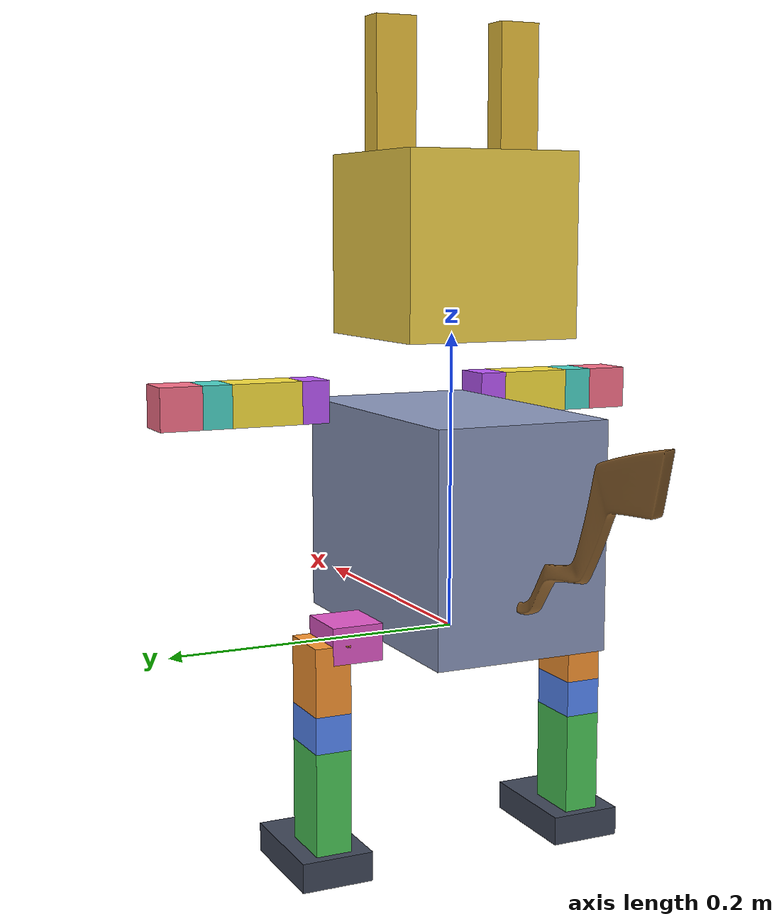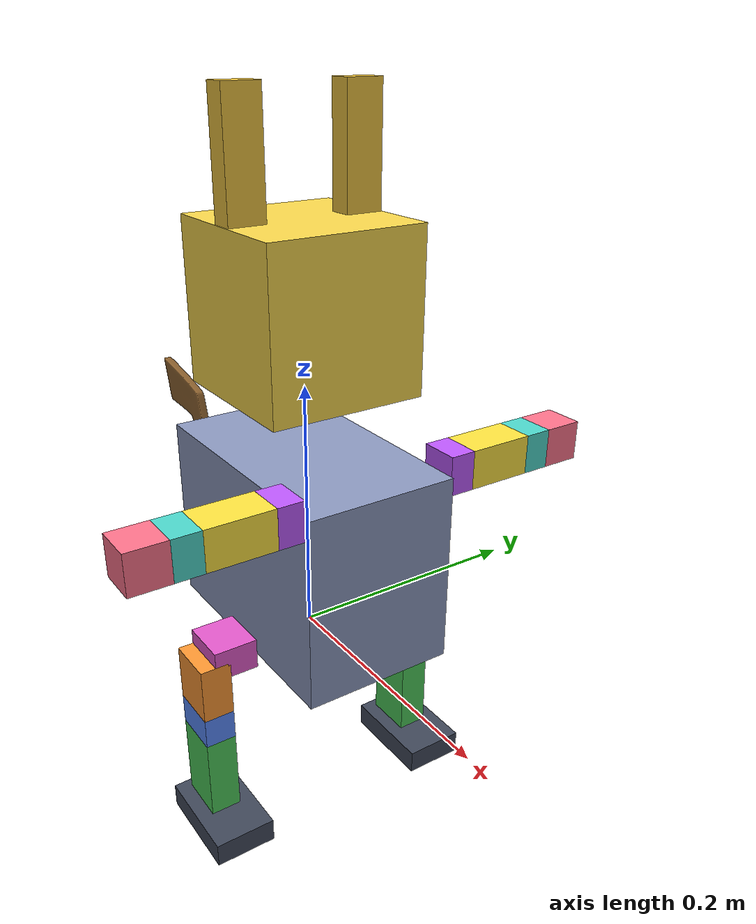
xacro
<?xml version="1.0"?>
<robot name="pikachu_sample_links" xmlns:xacro="http://www.ros.org/wiki/xacro">

  <!-- 【集中参数区】改这里即可整体调整 / 适配骨骼模型              -->

  <!-- ==== base：躯干 / 肩 ==== -->
  <xacro:property name="pelvis_half_width" value="0.06"/>
    <!-- 骨盆半宽：躯干中轴线 → 髋 pitch 关节的横向(y)距离，左右腿共用 -->
  <xacro:property name="shoulder_height"   value="0.15"/>
    <!-- 肩高：髋 pitch 平面 → 臂 pitch 关节的 z 抬升（也是躯干盒高度） -->
  <xacro:property name="torso_len_x"       value="0.2"/>
    <!-- 躯干盒 x(前后) 厚度 -->
  <!-- 躯干盒 y(左右) 宽度已绑定 pelvis_half_width*2：随骨盆联动，
       避免调整髋半宽时躯干不跟着加宽、两侧腿像架空一样 -->

  <!-- ==== arm：手臂（pitch/roll/yaw/elbow 四段，全 revolute 可动） ==== -->
  <xacro:property name="arm_y_offset" value="0.06"/>
    <!-- 臂 pitch 关节相对躯干中轴线 的横向(y)偏移，默认=pelvis_half_width，可独立调（左右反对称） -->
  <xacro:property name="arm_x_offset" value="0.083"/>
    <!-- 臂 pitch 关节相对躯干中心的 x(前后) 偏移（原硬编码 0.04） -->
  <xacro:property name="arm_pitch_to_roll_y" value="0.02"/>
    <!-- 臂 pitch→roll 沿 y 偏移 -->
  <xacro:property name="arm_upper_z" value="0.051"/>
    <!-- 臂 roll 段：沿 -z 偏移 / 长度 -->
  <xacro:property name="arm_lower_z" value="0.021"/>
    <!-- 臂 yaw 段：沿 -z 偏移 / 长度 -->
  <xacro:property name="arm_thick_x" value="0.03"/>
    <!-- 臂 box x(前后) 厚 -->
  <xacro:property name="arm_width_y" value="0.03"/>
    <!-- 臂 box y 厚 -->
  <xacro:property name="arm_lim_min" value="-1.57"/>
    <!-- 臂 pitch/roll/yaw/elbow 的关节下限（弧度） -->
  <xacro:property name="arm_lim_max" value="1.57"/>
    <!-- 臂 pitch/roll/yaw/elbow 的关节上限（弧度） -->

  <!-- ==== leg：腿（骨盆横向/侧段 + 纵向骨长 + 截面 + 脚） ==== -->
  <xacro:property name="hip_pitch_to_roll_y" value="0.0355"/>
    <!-- hip_pitch→hip_roll 关节沿 y 偏移 -->
  <xacro:property name="hip_roll_to_yaw_z"   value="0.046"/>
    <!-- hip_roll→hip_yaw 关节沿 -z 偏移（骨盆下沿） -->
  <xacro:property name="thigh_length" value="0.025"/>
    <!-- 【腿纵向骨长】大腿：hip_yaw→knee 关节 沿 -z 偏移（适配骨骼重点调） -->
  <xacro:property name="shank_length" value="0.070"/>
    <!-- 小腿：knee→ankle 关节 沿 -z 偏移（适配骨骼重点调） -->
  <xacro:property name="leg_thick_x" value="0.04"/>
    <!-- 腿 box 的 x(前后) 厚 -->
  <xacro:property name="leg_width_y" value="0.025"/>
    <!-- 腿 box 的 y(内外) 厚 -->
  <xacro:property name="foot_len_x" value="0.08"/>
  <xacro:property name="foot_wid_y" value="0.05"/>
  <xacro:property name="foot_hgt_z" value="0.02"/>
    <!-- 脚掌尺寸：长 / 宽 / 高 -->

  <!-- ==== head：头（pitch/yaw/roll 三段，全 revolute 可动） ==== -->
  <xacro:property name="head_len_x"         value="0.12"/>
    <!-- 头 x(前后) 尺寸 -->
  <xacro:property name="head_wid_y"         value="0.12"/>
    <!-- 头 y(左右) 尺寸 -->
  <xacro:property name="head_hgt_z"         value="0.12"/>
    <!-- 头 z(上下) 尺寸 -->
  <xacro:property name="head_bottom_offset" value="0.0484"/>
    <!-- 头底部 相对躯干顶(z=shoulder_height) 的额外抬升，>=0 -->
  <xacro:property name="head_lim_min" value="-0.8"/>
    <!-- 头关节下限（弧度） -->
  <xacro:property name="head_lim_max" value="0.8"/>
    <!-- 头关节上限（弧度） -->

  <!-- ==== ear：耳朵（左右各 pitch+roll 两关节，自头顶两侧伸出） ==== -->
  <xacro:property name="ear_off_y"       value="0.045"/>
    <!-- 耳朵 相对头中心 的横向(y)偏移，左右耳反对称 -->
  <xacro:property name="ear_len"         value="0.085"/>
    <!-- 耳全长（单段 box，从头顶 +z 伸出，到耳尖） -->
  <xacro:property name="ear_thick_x"     value="0.018"/>
    <!-- 耳 x(前后) 厚 -->
  <xacro:property name="ear_width_y"     value="0.028"/>
    <!-- 耳 y(左右) 宽 -->
  <xacro:property name="ear_lim_min"     value="-0.6"/>
    <!-- 耳关节下限（弧度） -->
  <xacro:property name="ear_lim_max"     value="0.8"/>
    <!-- 耳关节上限（弧度） -->

  <!-- ==== tail：尾巴（pitch+yaw 两关节，自躯干背面伸出） ==== -->
  <xacro:property name="tail_root_z"     value="0.03"/>
    <!-- 尾根 相对躯干底(z=0) 的高度 -->
  <xacro:property name="tail_len"        value="0.095"/>
    <!-- 尾全长（单段 box，沿 -x 从躯干后表面伸出，到尾尖） -->
  <xacro:property name="tail_wid"        value="0.05"/>
    <!-- 尾 y(左右) 宽（扁） -->
  <xacro:property name="tail_thick"      value="0.02"/>
    <!-- 尾 z(上下) 厚 -->
  <xacro:property name="tail_lim_min"    value="-1.2"/>
    <!-- 尾关节下限（弧度） -->
  <xacro:property name="tail_lim_max"    value="1.2"/>
    <!-- 尾关节上限（弧度） -->

  <!-- ==== 材质（仅便于视觉区分；相邻关节用不同色，左右对称） ==== -->
  <xacro:property name="mat_torso"   value="0.55 0.60 0.75 1"/>
    <!-- 躯干：淡蓝灰 -->
  <xacro:property name="mat_arm_pitch"     value="0.75 0.35 1.00 1"/>
    <!-- 臂段A(arm_pitch 肩)：紫 -->
  <xacro:property name="mat_arm_roll"      value="1.00 0.90 0.25 1"/>
    <!-- 臂段B(arm_roll 上臂)：黄 -->
  <xacro:property name="mat_arm_yaw"       value="0.30 0.85 0.80 1"/>
    <!-- 臂段C(arm_yaw 下臂)：青 -->
  <xacro:property name="mat_arm_elbow"     value="1.00 0.45 0.55 1"/>
    <!-- 臂段D(elbow 手)：珊瑚 -->
  <xacro:property name="mat_leg_hip_pitch" value="0.90 0.35 0.80 1"/>
    <!-- 腿段A(hip_pitch)：品红 -->
  <xacro:property name="mat_leg_hip_roll"  value="1.00 0.60 0.20 1"/>
    <!-- 腿段B(hip_roll)：橙 -->
  <xacro:property name="mat_leg_hip_yaw"   value="0.35 0.55 1.00 1"/>
    <!-- 腿段C(hip_yaw 大腿)：蓝 -->
  <xacro:property name="mat_leg_knee"      value="0.30 0.80 0.35 1"/>
    <!-- 腿段D(knee 小腿)：绿 -->
  <xacro:property name="mat_leg_ankle"     value="0.25 0.28 0.35 1"/>
    <!-- 腿段E(ankle 脚)：深灰蓝 -->
  <xacro:property name="mat_head"    value="0.98 0.85 0.30 1"/>
    <!-- 头：亮黄 -->
  <xacro:property name="mat_ear"         value="0.95 0.78 0.25 1"/>
    <!-- 耳朵：亮黄 -->
  <xacro:property name="mat_tail"        value="0.55 0.38 0.18 1"/>
    <!-- 尾巴：棕 -->

  <!-- 材质定义（每段独立颜色，左右对称共用同一套）              -->
  <material name="torso_blue">
    <color rgba="${mat_torso}"/>
  </material>
  <material name="arm_pitch">
    <color rgba="${mat_arm_pitch}"/>
  </material>
  <material name="arm_roll">
    <color rgba="${mat_arm_roll}"/>
  </material>
  <material name="arm_yaw">
    <color rgba="${mat_arm_yaw}"/>
  </material>
  <material name="arm_elbow">
    <color rgba="${mat_arm_elbow}"/>
  </material>
  <material name="leg_hip_pitch">
    <color rgba="${mat_leg_hip_pitch}"/>
  </material>
  <material name="leg_hip_roll">
    <color rgba="${mat_leg_hip_roll}"/>
  </material>
  <material name="leg_hip_yaw">
    <color rgba="${mat_leg_hip_yaw}"/>
  </material>
  <material name="leg_knee">
    <color rgba="${mat_leg_knee}"/>
  </material>
  <material name="leg_ankle">
    <color rgba="${mat_leg_ankle}"/>
  </material>
  <material name="head_yellow">
    <color rgba="${mat_head}"/>
  </material>
  <material name="ear_yellow">
    <color rgba="${mat_ear}"/>
  </material>
  <material name="tail_brown">
    <color rgba="${mat_tail}"/>
  </material>

  <!-- 腿部宏：生成 pitch/roll/yaw/knee/ankle 五个 link             -->
  <!--   side: left | right     sn:  1 | -1（y 方向符号）      -->
  <xacro:macro name="leg_links" params="side sn">
    <!-- hip_pitch_link：覆盖到 roll 的横向(y)段 -->
    <link name="${side}_hip_pitch_link">
      <visual>
        <origin xyz="0 ${sn*hip_pitch_to_roll_y/2.0} 0" rpy="0 0 0"/>
        <geometry>
          <box size="${leg_thick_x} ${hip_pitch_to_roll_y} ${leg_width_y}"/>
        </geometry>
        <material name="leg_hip_pitch"/>
      </visual>
<collision>
        <origin xyz="0 ${sn*hip_pitch_to_roll_y/2.0} 0" rpy="0 0 0"/>
        <geometry>
          <box size="${leg_thick_x} ${hip_pitch_to_roll_y} ${leg_width_y}"/>
        </geometry>
      </collision>
    </link>

    <joint name="${side}_hip_roll_joint" type="revolute">
      <origin xyz="0 ${sn*hip_pitch_to_roll_y} 0" rpy="0 0 0"/>
      <parent link="${side}_hip_pitch_link"/>
      <child  link="${side}_hip_roll_link"/>
      <axis xyz="${sn} 0 0"/>
      <limit lower="-0.09" upper="0.26" effort="9.0" velocity="1"/>
    </joint>

    <!-- hip_roll_link：覆盖到 yaw 的 -z 骨盆段 -->
    <link name="${side}_hip_roll_link">
      <visual>
        <origin xyz="0 0 ${-hip_roll_to_yaw_z/2.0}" rpy="0 0 0"/>
        <geometry>
          <box size="${leg_thick_x} ${leg_width_y} ${hip_roll_to_yaw_z}"/>
        </geometry>
        <material name="leg_hip_roll"/>
      </visual>
<collision>
        <origin xyz="0 0 ${-hip_roll_to_yaw_z/2.0}" rpy="0 0 0"/>
        <geometry>
          <box size="${leg_thick_x} ${leg_width_y} ${hip_roll_to_yaw_z}"/>
        </geometry>
      </collision>
    </link>

    <joint name="${side}_hip_yaw_joint" type="revolute">
      <origin xyz="0 0 ${-hip_roll_to_yaw_z}" rpy="0 0 0"/>
      <parent link="${side}_hip_roll_link"/>
      <child  link="${side}_hip_yaw_link"/>
      <axis xyz="0 0 ${sn}"/>
      <limit lower="-0.09" upper="0.26" effort="9.0" velocity="1"/>
    </joint>

    <!-- hip_yaw_link：大腿段（thigh_length） -->
    <link name="${side}_hip_yaw_link">
      <visual>
        <origin xyz="0 0 ${-thigh_length/2.0}" rpy="0 0 0"/>
        <geometry>
          <box size="${leg_thick_x} ${leg_width_y} ${thigh_length}"/>
        </geometry>
        <material name="leg_hip_yaw"/>
      </visual>
<collision>
        <origin xyz="0 0 ${-thigh_length/2.0}" rpy="0 0 0"/>
        <geometry>
          <box size="${leg_thick_x} ${leg_width_y} ${thigh_length}"/>
        </geometry>
      </collision>
    </link>

    <joint name="${side}_knee_joint" type="revolute">
      <origin xyz="0 0 ${-thigh_length}" rpy="0 0 0"/>
      <parent link="${side}_hip_yaw_link"/>
      <child  link="${side}_knee_link"/>
      <axis xyz="0 1 0"/>
      <limit lower="0" upper="1.57" effort="12.5" velocity="3"/>
    </joint>

    <!-- knee_link：小腿段（shank_length） -->
    <link name="${side}_knee_link">
      <visual>
        <origin xyz="0 0 ${-shank_length/2.0}" rpy="0 0 0"/>
        <geometry>
          <box size="${leg_thick_x} ${leg_width_y} ${shank_length}"/>
        </geometry>
        <material name="leg_knee"/>
      </visual>
<collision>
        <origin xyz="0 0 ${-shank_length/2.0}" rpy="0 0 0"/>
        <geometry>
          <box size="${leg_thick_x} ${leg_width_y} ${shank_length}"/>
        </geometry>
      </collision>
    </link>

    <joint name="${side}_ankle_joint" type="revolute">
      <origin xyz="0 0 ${-shank_length}" rpy="0 0 0"/>
      <parent link="${side}_knee_link"/>
      <child  link="${side}_ankle_link"/>
      <axis xyz="0 -1 0"/>
      <limit lower="-0.52" upper="1.05" effort="9.0" velocity="2"/>
    </joint>

    <!-- ankle_link：脚掌（末端） -->
    <link name="${side}_ankle_link">
      <visual>
        <origin xyz="${foot_len_x/6.0} 0 ${-foot_hgt_z/2.0}" rpy="0 0 0"/>
        <geometry>
          <box size="${foot_len_x} ${foot_wid_y} ${foot_hgt_z}"/>
        </geometry>
        <material name="leg_ankle"/>
      </visual>
<collision>
        <origin xyz="${foot_len_x/6.0} 0 ${-foot_hgt_z/2.0}" rpy="0 0 0"/>
        <geometry>
          <box size="${foot_len_x} ${foot_wid_y} ${foot_hgt_z}"/>
        </geometry>
      </collision>
    </link>
  </xacro:macro>

  <!-- 手臂宏：生成 pitch/roll/yaw/elbow 四个 link（全部 revolute 可动） -->
  <xacro:macro name="arm_links" params="side sn">
    <!-- arm_pitch_link：覆盖到 roll 的横向(y)段 -->
    <link name="${side}_arm_pitch_link">
      <visual>
        <origin xyz="0 ${sn*arm_pitch_to_roll_y/2.0} 0" rpy="0 0 0"/>
        <geometry>
          <box size="${arm_thick_x} ${arm_pitch_to_roll_y} ${arm_width_y}"/>
        </geometry>
        <material name="arm_pitch"/>
      </visual>
<collision>
        <origin xyz="0 ${sn*arm_pitch_to_roll_y/2.0} 0" rpy="0 0 0"/>
        <geometry>
          <box size="${arm_thick_x} ${arm_pitch_to_roll_y} ${arm_width_y}"/>
        </geometry>
      </collision>
    </link>

    <joint name="${side}_arm_roll_joint" type="revolute">
      <!-- rpy 加 90°(x) 偏置：默认(angle=0)即 T-pose 水平外展，不再垂挂 -->
      <origin xyz="0 ${sn*arm_pitch_to_roll_y} 0" rpy="${sn*1.57} 0 0"/>
      <parent link="${side}_arm_pitch_link"/>
      <child  link="${side}_arm_roll_link"/>
      <axis xyz="${sn} 0 0"/>
      <limit lower="${arm_lim_min}" upper="${arm_lim_max}" effort="2.0" velocity="2"/>
    </joint>

    <!-- arm_roll_link：上臂段（arm_upper_z） -->
    <link name="${side}_arm_roll_link">
      <visual>
        <origin xyz="0 0 ${-arm_upper_z/2.0}" rpy="0 0 0"/>
        <geometry>
          <box size="${arm_thick_x} ${arm_width_y} ${arm_upper_z}"/>
        </geometry>
        <material name="arm_roll"/>
      </visual>
<collision>
        <origin xyz="0 0 ${-arm_upper_z/2.0}" rpy="0 0 0"/>
        <geometry>
          <box size="${arm_thick_x} ${arm_width_y} ${arm_upper_z}"/>
        </geometry>
      </collision>
    </link>

    <joint name="${side}_arm_yaw_joint" type="revolute">
      <origin xyz="0 0 ${-arm_upper_z}" rpy="0 0 0"/>
      <parent link="${side}_arm_roll_link"/>
      <child  link="${side}_arm_yaw_link"/>
      <axis xyz="0 0 ${sn}"/>
      <limit lower="${arm_lim_min}" upper="${arm_lim_max}" effort="2.0" velocity="2"/>
    </joint>

    <!-- arm_yaw_link：下臂段（arm_lower_z） -->
    <link name="${side}_arm_yaw_link">
      <visual>
        <origin xyz="0 0 ${-arm_lower_z/2.0}" rpy="0 0 0"/>
        <geometry>
          <box size="${arm_thick_x} ${arm_width_y} ${arm_lower_z}"/>
        </geometry>
        <material name="arm_yaw"/>
      </visual>
<collision>
        <origin xyz="0 0 ${-arm_lower_z/2.0}" rpy="0 0 0"/>
        <geometry>
          <box size="${arm_thick_x} ${arm_width_y} ${arm_lower_z}"/>
        </geometry>
      </collision>
    </link>

    <joint name="${side}_elbow_joint" type="revolute">
      <!-- rpy 清零：去除原折弯，默认手与前臂连成直线（展开） -->
      <origin xyz="0 0 ${-arm_lower_z}" rpy="0 0 0"/>
      <parent link="${side}_arm_yaw_link"/>
      <child  link="${side}_elbow_link"/>
      <axis xyz="0 ${-sn} 0"/>
      <limit lower="${arm_lim_min}" upper="${arm_lim_max}" effort="2.0" velocity="2"/>
    </joint>

    <!-- elbow_link：手（末端） -->
    <link name="${side}_elbow_link">
      <visual>
        <origin xyz="0 0 ${-arm_thick_x/2.0}" rpy="0 0 0"/>
        <geometry>
          <box size="${arm_thick_x} ${arm_width_y} ${arm_thick_x}"/>
        </geometry>
        <material name="arm_elbow"/>
      </visual>
<collision>
        <origin xyz="0 0 ${-arm_thick_x/2.0}" rpy="0 0 0"/>
        <geometry>
          <box size="${arm_thick_x} ${arm_width_y} ${arm_thick_x}"/>
        </geometry>
      </collision>
    </link>
  </xacro:macro>

  <!-- base_link：躯干（含 4 个与躯干相连的 base 关节）           -->
  <link name="base_link">
    <visual>
      <origin xyz="0 0 ${shoulder_height/2.0}" rpy="0 0 0"/>
      <geometry>
        <box size="${torso_len_x} ${pelvis_half_width*2} ${shoulder_height}"/>
      </geometry>
      <material name="torso_blue"/>
    </visual>
<collision>
      <origin xyz="0 0 ${shoulder_height/2.0}" rpy="0 0 0"/>
      <geometry>
        <box size="${torso_len_x} ${pelvis_half_width*2} ${shoulder_height}"/>
      </geometry>
    </collision>
  </link>

  <!-- 耳朵宏：生成 pitch_link + roll_joint + roll_link（两关节）  -->
  <!--   parent 为头顶的 head_roll_link；ear_pitch_joint 由外部定义  -->
  <xacro:macro name="ear_links" params="side sn">
    <!-- ear_pitch_link：空连杆（无 box，仅作两个 DOF 的中继节点，位于耳根） -->
    <link name="${side}_ear_pitch_link">
      <collision>
        <origin xyz="0 0 0" rpy="0 0 0"/>
        <geometry>
          <box size="0.004 0.004 0.004"/>
        </geometry>
      </collision>
    </link>

    <joint name="${side}_ear_roll_joint" type="revolute">
      <origin xyz="0 0 0" rpy="0 0 0"/>
      <parent link="${side}_ear_pitch_link"/>
      <child  link="${side}_ear_roll_link"/>
      <!-- 轴改 x：真正绕前后横轴 roll（耳朵左右倒伏/张开）；原 0 0 z 是 yaw -->
      <axis xyz="1 0 0"/>
      <limit lower="${ear_lim_min}" upper="${ear_lim_max}" effort="1.0" velocity="2"/>
    </joint>

    <!-- ear_roll_link：耳朵唯一 box，长度=耳全长 ear_len，从头顶竖直伸出 -->
    <link name="${side}_ear_roll_link">
      <visual>
        <origin xyz="0 0 ${ear_len/2.0}" rpy="0 0 0"/>
        <geometry>
          <box size="${ear_thick_x} ${ear_width_y} ${ear_len}"/>
        </geometry>
        <material name="ear_yellow"/>
      </visual>
<collision>
        <origin xyz="0 0 ${ear_len/2.0}" rpy="0 0 0"/>
        <geometry>
          <box size="${ear_thick_x} ${ear_width_y} ${ear_len}"/>
        </geometry>
      </collision>
    </link>
  </xacro:macro>

  <!-- 头部：pitch → yaw → roll 三段关节（原 head_joint 拆成 3 DOF）  -->
  <!--   三段共用 head_lim_* 限位；头大 box 挂在末端 head_roll_link -->
  <joint name="head_pitch_joint" type="revolute">
    <origin xyz="0 0 ${shoulder_height + head_bottom_offset + head_hgt_z/2.0}" rpy="0 0 0"/>
    <parent link="base_link"/>
    <child  link="head_pitch_link"/>
    <axis xyz="0 1 0"/>
    <limit lower="${head_lim_min}" upper="${head_lim_max}" effort="2.0" velocity="2"/>
  </joint>
  <!-- head_pitch_link：空连杆（无 box，仅作 pitch→yaw 两级 DOF 的中继） -->
  <link name="head_pitch_link">
      <collision>
        <origin xyz="0 0 0" rpy="0 0 0"/>
        <geometry>
          <box size="0.004 0.004 0.004"/>
        </geometry>
      </collision>
    </link>

  <joint name="head_yaw_joint" type="revolute">
    <origin xyz="0 0 0" rpy="0 0 0"/>
    <parent link="head_pitch_link"/>
    <child  link="head_yaw_link"/>
    <axis xyz="0 0 1"/>
    <limit lower="${head_lim_min}" upper="${head_lim_max}" effort="2.0" velocity="2"/>
  </joint>
  <link name="head_yaw_link">
      <collision>
        <origin xyz="0 0 0" rpy="0 0 0"/>
        <geometry>
          <box size="0.004 0.004 0.004"/>
        </geometry>
      </collision>
    </link>

  <joint name="head_roll_joint" type="revolute">
    <origin xyz="0 0 0" rpy="0 0 0"/>
    <parent link="head_yaw_link"/>
    <child  link="head_roll_link"/>
    <axis xyz="1 0 0"/>
    <limit lower="${head_lim_min}" upper="${head_lim_max}" effort="2.0" velocity="2"/>
  </joint>
  <!-- head_roll_link：实心头（原 head_link 大 box，末端） -->
  <link name="head_roll_link">
    <visual>
      <origin xyz="0 0 0" rpy="0 0 0"/>
      <geometry>
        <box size="${head_len_x} ${head_wid_y} ${head_hgt_z}"/>
      </geometry>
      <material name="head_yellow"/>
    </visual>
<collision>
      <origin xyz="0 0 0" rpy="0 0 0"/>
      <geometry>
        <box size="${head_len_x} ${head_wid_y} ${head_hgt_z}"/>
      </geometry>
    </collision>
  </link>

  <!-- 左耳 / 右耳 pitch：head_roll_link → 耳（roll 由 ear_links 宏生成） -->
  <joint name="left_ear_pitch_joint" type="revolute">
    <origin xyz="0 ${ear_off_y} ${head_hgt_z/2.0}" rpy="0 0 0"/>
    <parent link="head_roll_link"/>
    <child  link="left_ear_pitch_link"/>
    <axis xyz="0 1 0"/>
    <limit lower="${ear_lim_min}" upper="${ear_lim_max}" effort="1.0" velocity="2"/>
  </joint>
  <joint name="right_ear_pitch_joint" type="revolute">
    <origin xyz="0 ${-ear_off_y} ${head_hgt_z/2.0}" rpy="0 0 0"/>
    <parent link="head_roll_link"/>
    <child  link="right_ear_pitch_link"/>
    <axis xyz="0 1 0"/>
    <limit lower="${ear_lim_min}" upper="${ear_lim_max}" effort="1.0" velocity="2"/>
  </joint>

  <!-- 尾巴：tail_pitch → tail_yaw 两关节（躯干背面伸出）             -->
  <joint name="tail_pitch_joint" type="revolute">
    <origin xyz="${-torso_len_x/2.0} 0 ${tail_root_z}" rpy="0 0 0"/>
    <parent link="base_link"/>
    <child  link="tail_pitch_link"/>
    <axis xyz="0 1 0"/>
    <limit lower="${tail_lim_min}" upper="${tail_lim_max}" effort="2.0" velocity="2"/>
  </joint>
  <!-- tail_pitch_link：空连杆（无 box，仅作两个 DOF 的中继节点，位于尾根） -->
  <link name="tail_pitch_link">
      <collision>
        <origin xyz="0 0 0" rpy="0 0 0"/>
        <geometry>
          <box size="0.004 0.004 0.004"/>
        </geometry>
      </collision>
    </link>

  <joint name="tail_yaw_joint" type="revolute">
    <origin xyz="0 0 0" rpy="0 0 0"/>
    <parent link="tail_pitch_link"/>
    <child  link="tail_yaw_link"/>
    <axis xyz="0 0 1"/>
    <limit lower="${tail_lim_min}" upper="${tail_lim_max}" effort="2.0" velocity="2"/>
  </joint>
  <!-- tail_yaw_link：尾巴唯一 box，长度=尾全长 tail_len，沿 -x 从躯干背面伸出 -->
  <link name="tail_yaw_link">
    <visual>
      <origin xyz="-0.07 0 0" rpy="0 0 1.57"/>
      <geometry>
        <mesh filename="meshes/pikachu_skin_self_rig_mesh_T3Plane-edited.stl"/>
      </geometry>
      <material name="tail_brown"/>
    </visual>
<collision>
      <origin xyz="${-tail_len/2.0} 0 0" rpy="0 0 0"/>
      <geometry>
        <box size="${tail_len} ${tail_wid} ${tail_thick}"/>
      </geometry>
    </collision>
  </link>

  <!-- 髋 pitch：型→left_hip_pitch_link / right_hip_pitch_link -->
  <joint name="left_hip_pitch_joint" type="revolute">
    <origin xyz="0 ${pelvis_half_width} 0" rpy="0 0 0"/>
    <parent link="base_link"/>
    <child  link="left_hip_pitch_link"/>
    <axis xyz="0 -1 0"/>
    <limit lower="0" upper="2.44" effort="12.5" velocity="2"/>
  </joint>
  <joint name="right_hip_pitch_joint" type="revolute">
    <origin xyz="0 ${-pelvis_half_width} 0" rpy="0 0 0"/>
    <parent link="base_link"/>
    <child  link="right_hip_pitch_link"/>
    <axis xyz="0 -1 0"/>
    <limit lower="0" upper="2.44" effort="12.5" velocity="2"/>
  </joint>

  <!-- 臂 pitch：型→left/right_arm_pitch_link（固定，抬升 shoulder_height） -->
  <joint name="left_arm_pitch_joint" type="revolute">
    <origin xyz="${arm_x_offset} ${arm_y_offset} ${shoulder_height}" rpy="0 0 0"/>
    <parent link="base_link"/>
    <child  link="left_arm_pitch_link"/>
    <axis xyz="0 -1 0"/>
    <limit lower="${arm_lim_min}" upper="${arm_lim_max}" effort="2.0" velocity="2"/>
  </joint>
  <joint name="right_arm_pitch_joint" type="revolute">
    <origin xyz="${arm_x_offset} ${-arm_y_offset} ${shoulder_height}" rpy="0 0 0"/>
    <parent link="base_link"/>
    <child  link="right_arm_pitch_link"/>
    <axis xyz="0 -1 0"/>
    <limit lower="${arm_lim_min}" upper="${arm_lim_max}" effort="2.0" velocity="2"/>
  </joint>

  <!-- 组装：左腿 / 右腿 / 左臂 / 右臂                           -->
  <xacro:leg_links side="left"  sn="1"></xacro:leg_links>
  <xacro:leg_links side="right" sn="-1"></xacro:leg_links>

  <xacro:arm_links side="left"  sn="1"></xacro:arm_links>
  <xacro:arm_links side="right" sn="-1"></xacro:arm_links>

  <xacro:ear_links side="left"  sn="1"></xacro:ear_links>
  <xacro:ear_links side="right" sn="-1"></xacro:ear_links>

</robot>
